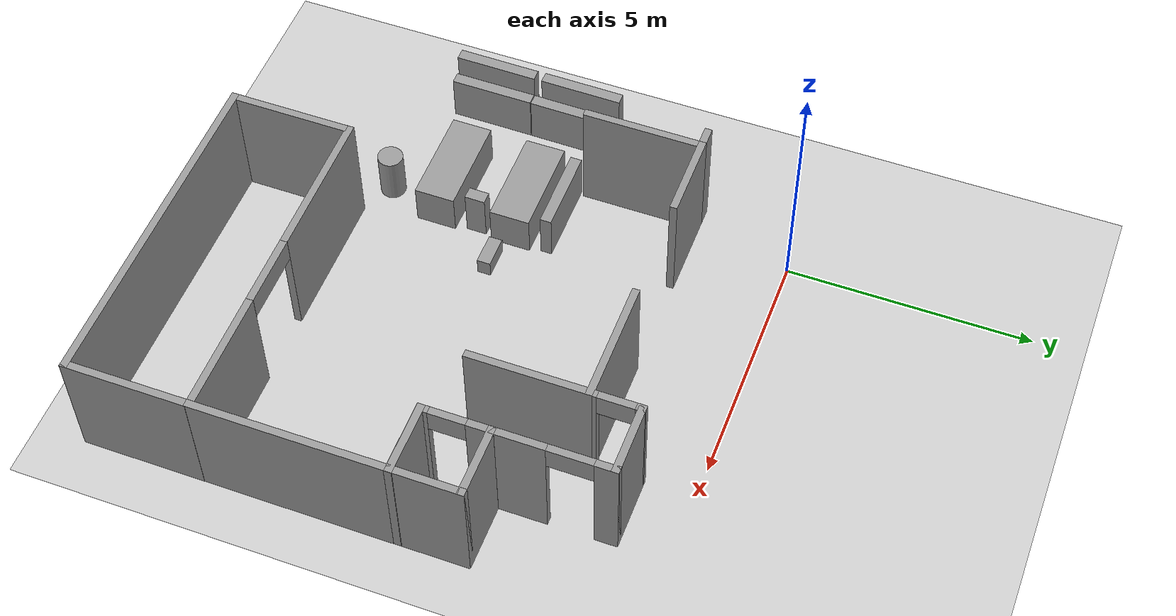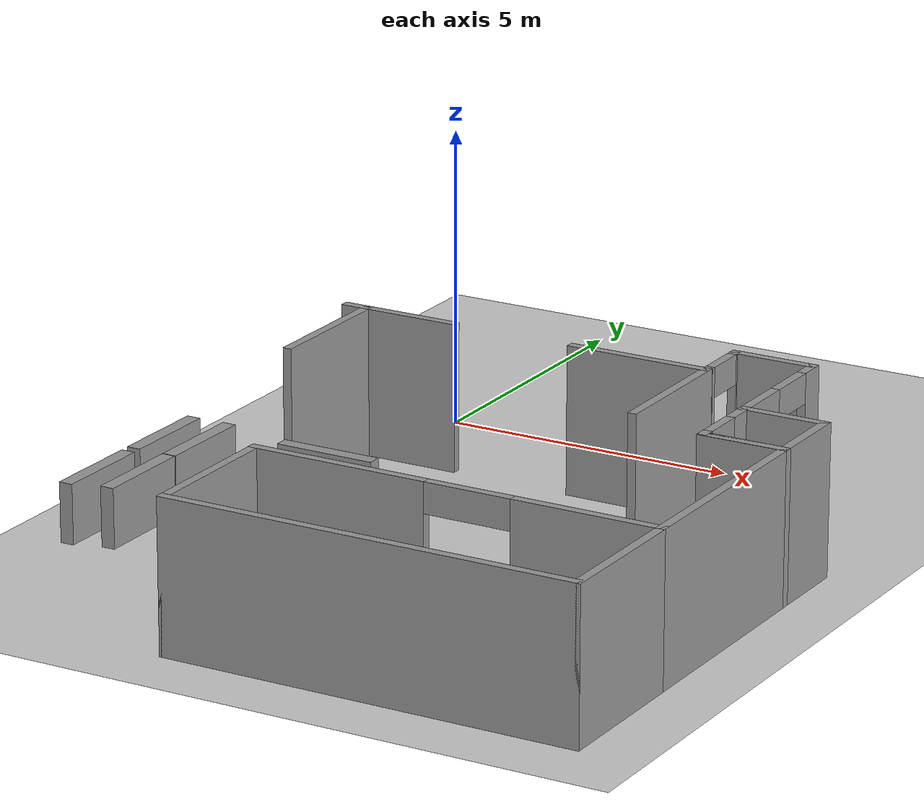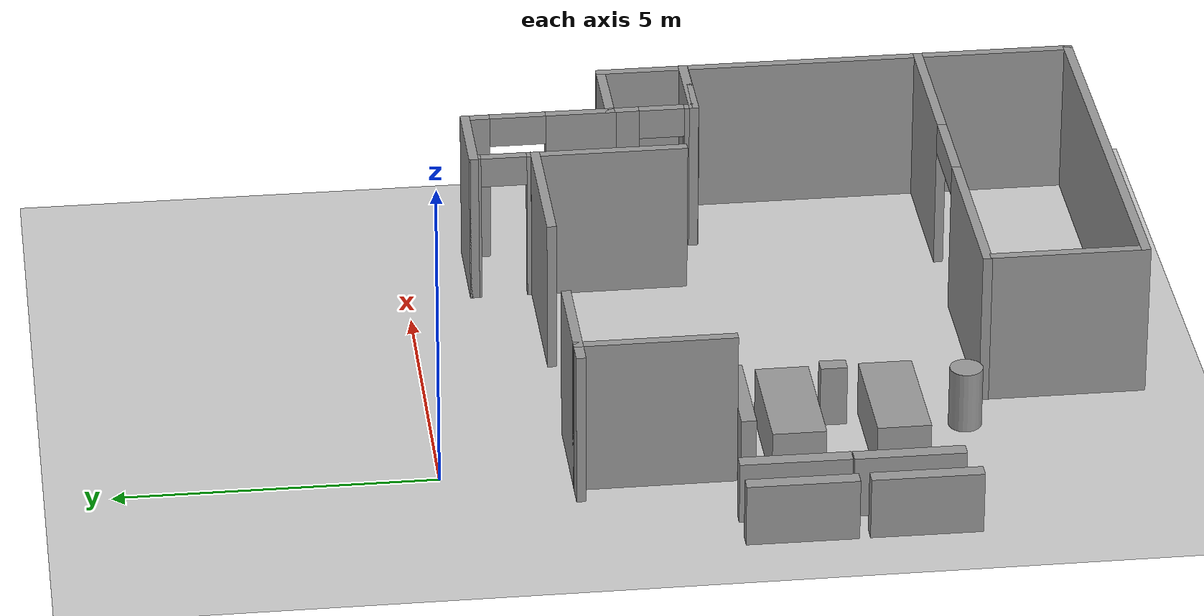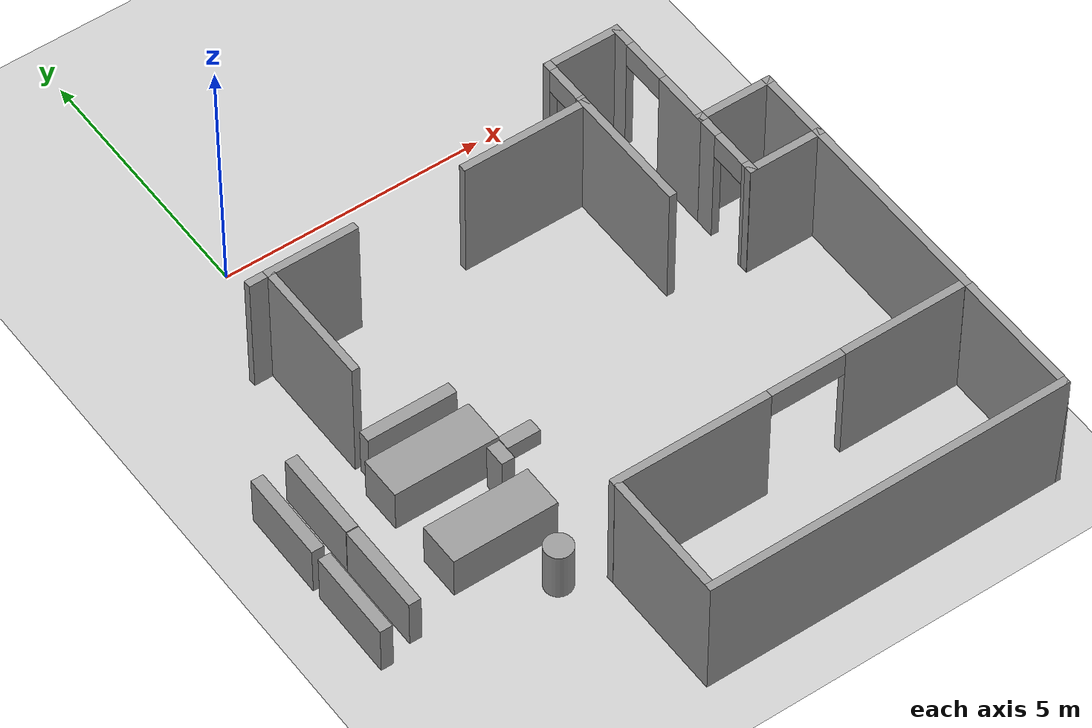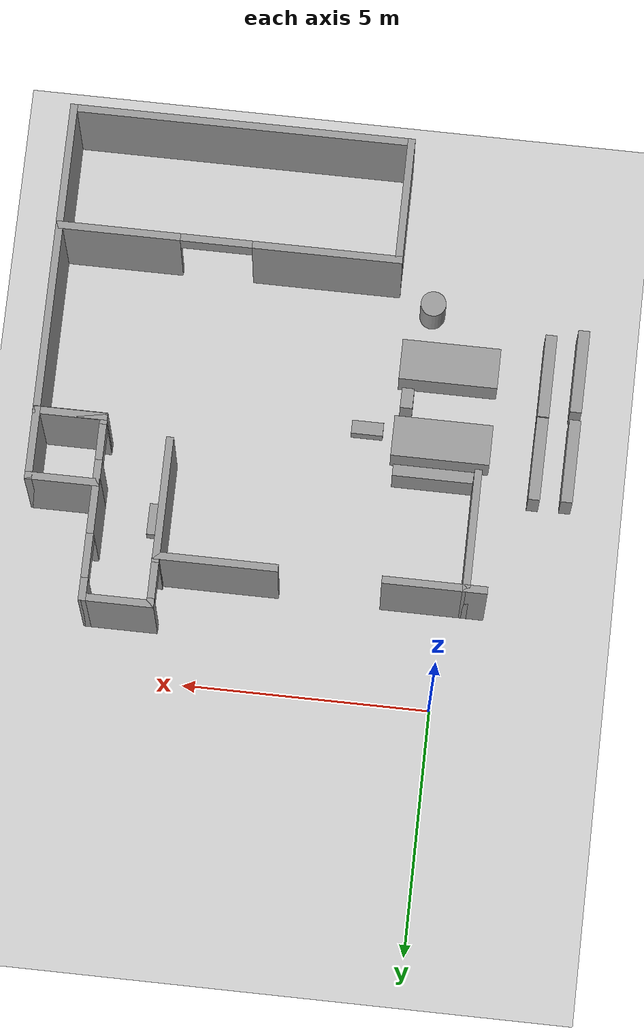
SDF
<sdf version="1.9">
 <world name="default">
  <model name="ground_plane">
   <static>true</static>
   <link name="link">
    <collision name="collision">
     <geometry><plane><normal>0 0 1</normal><size>100 100</size></plane></geometry>
     <surface><friction><ode><mu>100</mu><mu2>50</mu2></ode></friction></surface>
    </collision>
    <visual name="visual">
     <cast_shadows>false</cast_shadows>
     <geometry><plane><normal>0 0 1</normal><size>100 100</size></plane></geometry>
     <material>
      <script><uri>file://media/materials/scripts/gazebo.material</uri><name>Gazebo/Grey</name></script>
     </material>
    </visual>
   </link>
  </model>
  <model name="cma_parede_t">
   <pose>0.15995500000000001 -3.2401599999999999 0 0 0 0</pose>
   <link name="Wall_15">
    <collision name="Wall_15_Collision">
     <geometry><box><size>2.5 0.14999999999999999 2.5</size></box></geometry>
     <pose>0 0 1.25 0 0 0</pose>
    </collision>
    <visual name="Wall_15_Visual">
     <pose>0 0 1.25 0 0 0</pose>
     <geometry><box><size>2.5 0.14999999999999999 2.5</size></box></geometry>
     <material>
      <script><uri>file://media/materials/scripts/gazebo.material</uri><name>Gazebo/Grey</name></script>
      <ambient>1 1 1 1</ambient>
     </material>
    </visual>
    <pose>-0.625 0 0 0 0 1.5708</pose>
   </link>
   <link name="Wall_16">
    <collision name="Wall_16_Collision">
     <geometry><box><size>0.5 0.14999999999999999 2.5</size></box></geometry>
     <pose>0 0 1.25 0 0 0</pose>
    </collision>
    <visual name="Wall_16_Visual">
     <pose>0 0 1.25 0 0 0</pose>
     <geometry><box><size>0.5 0.14999999999999999 2.5</size></box></geometry>
     <material>
      <script><uri>file://media/materials/scripts/gazebo.material</uri><name>Gazebo/Grey</name></script>
      <ambient>1 1 1 1</ambient>
     </material>
    </visual>
    <pose>-0.80000000000000004 1.175 0 0 0 3.1415899999999999</pose>
   </link>
   <link name="Wall_18">
    <collision name="Wall_18_Collision">
     <geometry><box><size>1.75 0.14999999999999999 2.5</size></box></geometry>
     <pose>0 0 1.25 0 0 0</pose>
    </collision>
    <visual name="Wall_18_Visual">
     <pose>0 0 1.25 0 0 0</pose>
     <geometry><box><size>1.75 0.14999999999999999 2.5</size></box></geometry>
     <material>
      <script><uri>file://media/materials/scripts/gazebo.material</uri><name>Gazebo/Grey</name></script>
      <ambient>1 1 1 1</ambient>
     </material>
    </visual>
    <pose>0.17499999999999999 1.175 0 0 0 0</pose>
   </link>
   <static>true</static>
  </model>
  <model name="cma_parede_L">
   <pose>4.97628 -6.6999199999999997 0 0 0 0</pose>
   <link name="Wall_0">
    <pose>0 -1.925 0 0 0 0</pose>
    <visual name="Wall_0_Visual_0">
     <pose>-1.9850000000000001 0 1.25 0 0 0</pose>
     <geometry><box><size>3.0299999999999998 0.14999999999999999 2.5</size></box></geometry>
     <material>
      <script><uri>file://media/materials/scripts/gazebo.material</uri><name>Gazebo/Grey</name></script>
      <ambient>1 1 1 1</ambient>
     </material>
    </visual>
    <collision name="Wall_0_Collision_0">
     <geometry><box><size>3.0299999999999998 0.14999999999999999 2.5</size></box></geometry>
     <pose>-1.9850000000000001 0 1.25 0 0 0</pose>
    </collision>
    <visual name="Wall_0_Visual_1">
     <pose>2.2400000000000002 0 1.25 0 0 0</pose>
     <geometry><box><size>2.52 0.14999999999999999 2.5</size></box></geometry>
     <material>
      <script><uri>file://media/materials/scripts/gazebo.material</uri><name>Gazebo/Grey</name></script>
      <ambient>1 1 1 1</ambient>
     </material>
    </visual>
    <collision name="Wall_0_Collision_1">
     <geometry><box><size>2.52 0.14999999999999999 2.5</size></box></geometry>
     <pose>2.2400000000000002 0 1.25 0 0 0</pose>
    </collision>
    <visual name="Wall_0_Visual_2">
     <pose>0.255 0 2.25 0 0 0</pose>
     <geometry><box><size>1.45 0.14999999999999999 0.5</size></box></geometry>
     <material>
      <script><uri>file://media/materials/scripts/gazebo.material</uri><name>Gazebo/Grey</name></script>
      <ambient>1 1 1 1</ambient>
     </material>
    </visual>
    <collision name="Wall_0_Collision_2">
     <geometry><box><size>1.45 0.14999999999999999 0.5</size></box></geometry>
     <pose>0.255 0 2.25 0 0 0</pose>
    </collision>
   </link>
   <link name="Wall_1">
    <collision name="Wall_1_Collision">
     <geometry><box><size>4 0.14999999999999999 2.5</size></box></geometry>
     <pose>0 0 1.25 0 0 0</pose>
    </collision>
    <visual name="Wall_1_Visual">
     <pose>0 0 1.25 0 0 0</pose>
     <geometry><box><size>4 0.14999999999999999 2.5</size></box></geometry>
     <material>
      <script><uri>file://media/materials/scripts/gazebo.material</uri><name>Gazebo/Grey</name></script>
      <ambient>1 1 1 1</ambient>
     </material>
    </visual>
    <pose>3.4249999999999998 0 0 0 0 1.5708</pose>
   </link>
   <link name="Wall_2">
    <collision name="Wall_2_Collision">
     <geometry><box><size>1.5 0.14999999999999999 2.5</size></box></geometry>
     <pose>0 0 1.25 0 0 0</pose>
    </collision>
    <visual name="Wall_2_Visual">
     <pose>0 0 1.25 0 0 0</pose>
     <geometry><box><size>1.5 0.14999999999999999 2.5</size></box></geometry>
     <material>
      <script><uri>file://media/materials/scripts/gazebo.material</uri><name>Gazebo/Grey</name></script>
      <ambient>1 1 1 1</ambient>
     </material>
    </visual>
    <pose>2.75 1.925 0 0 0 3.1415899999999999</pose>
   </link>
   <static>true</static>
  </model>
  <model name="cma_lavabo">
   <pose>7.7229700000000001 -4.0930200000000001 0 0 0 0</pose>
   <link name="Wall_4">
    <pose>-0.67500000000000004 0 0 0 0 1.5708</pose>
    <visual name="Wall_4_Visual_0">
     <pose>-0.63500000000000001 0 1.25 0 0 0</pose>
     <geometry><box><size>0.23000000000000001 0.14999999999999999 2.5</size></box></geometry>
     <material>
      <script><uri>file://media/materials/scripts/gazebo.material</uri><name>Gazebo/Grey</name></script>
      <ambient>1 1 1 1</ambient>
     </material>
    </visual>
    <collision name="Wall_4_Collision_0">
     <geometry><box><size>0.23000000000000001 0.14999999999999999 2.5</size></box></geometry>
     <pose>-0.63500000000000001 0 1.25 0 0 0</pose>
    </collision>
    <visual name="Wall_4_Visual_1">
     <pose>0.47999999999999998 0 1.25 0 0 0</pose>
     <geometry><box><size>0.54000000000000004 0.14999999999999999 2.5</size></box></geometry>
     <material>
      <script><uri>file://media/materials/scripts/gazebo.material</uri><name>Gazebo/Grey</name></script>
      <ambient>1 1 1 1</ambient>
     </material>
    </visual>
    <collision name="Wall_4_Collision_1">
     <geometry><box><size>0.54000000000000004 0.14999999999999999 2.5</size></box></geometry>
     <pose>0.47999999999999998 0 1.25 0 0 0</pose>
    </collision>
    <visual name="Wall_4_Visual_2">
     <pose>-0.155 0 2.25 0 0 0</pose>
     <geometry><box><size>0.72999999999999998 0.14999999999999999 0.5</size></box></geometry>
     <material>
      <script><uri>file://media/materials/scripts/gazebo.material</uri><name>Gazebo/Grey</name></script>
      <ambient>1 1 1 1</ambient>
     </material>
    </visual>
    <collision name="Wall_4_Collision_2">
     <geometry><box><size>0.72999999999999998 0.14999999999999999 0.5</size></box></geometry>
     <pose>-0.155 0 2.25 0 0 0</pose>
    </collision>
   </link>
   <link name="Wall_5">
    <collision name="Wall_5_Collision">
     <geometry><box><size>1.5 0.14999999999999999 2.5</size></box></geometry>
     <pose>0 0 1.25 0 0 0</pose>
    </collision>
    <visual name="Wall_5_Visual">
     <pose>0 0 1.25 0 0 0</pose>
     <geometry><box><size>1.5 0.14999999999999999 2.5</size></box></geometry>
     <material>
      <script><uri>file://media/materials/scripts/gazebo.material</uri><name>Gazebo/Grey</name></script>
      <ambient>1 1 1 1</ambient>
     </material>
    </visual>
    <pose>0 0.67500000000000004 0 0 0 0</pose>
   </link>
   <link name="Wall_6">
    <collision name="Wall_6_Collision">
     <geometry><box><size>1.5 0.14999999999999999 2.5</size></box></geometry>
     <pose>0 0 1.25 0 0 0</pose>
    </collision>
    <visual name="Wall_6_Visual">
     <pose>0 0 1.25 0 0 0</pose>
     <geometry><box><size>1.5 0.14999999999999999 2.5</size></box></geometry>
     <material>
      <script><uri>file://media/materials/scripts/gazebo.material</uri><name>Gazebo/Grey</name></script>
      <ambient>1 1 1 1</ambient>
     </material>
    </visual>
    <pose>0.67500000000000004 0 0 0 0 -1.5708</pose>
   </link>
   <link name="Wall_7">
    <collision name="Wall_7_Collision">
     <geometry><box><size>1.5 0.14999999999999999 2.5</size></box></geometry>
     <pose>0 0 1.25 0 0 0</pose>
    </collision>
    <visual name="Wall_7_Visual">
     <pose>0 0 1.25 0 0 0</pose>
     <geometry><box><size>1.5 0.14999999999999999 2.5</size></box></geometry>
     <material>
      <script><uri>file://media/materials/scripts/gazebo.material</uri><name>Gazebo/Grey</name></script>
      <ambient>1 1 1 1</ambient>
     </material>
    </visual>
    <pose>0 -0.67500000000000004 0 0 0 3.1415899999999999</pose>
   </link>
   <static>true</static>
  </model>
  <model name="cma_L2">
   <pose>4.5168299999999997 -3.24587 0 0 0 0</pose>
   <link name="Wall_10">
    <collision name="Wall_10_Collision">
     <geometry><box><size>2.5 0.14999999999999999 2.5</size></box></geometry>
     <pose>0 0 1.25 0 0 0</pose>
    </collision>
    <visual name="Wall_10_Visual">
     <pose>0 0 1.25 0 0 0</pose>
     <geometry><box><size>2.5 0.14999999999999999 2.5</size></box></geometry>
     <material>
      <script><uri>file://media/materials/scripts/gazebo.material</uri><name>Gazebo/Grey</name></script>
      <ambient>1 1 1 1</ambient>
     </material>
    </visual>
    <pose>1.175 0 0 0 0 -1.5708</pose>
   </link>
   <link name="Wall_9">
    <collision name="Wall_9_Collision">
     <geometry><box><size>2.5 0.14999999999999999 2.5</size></box></geometry>
     <pose>0 0 1.25 0 0 0</pose>
    </collision>
    <visual name="Wall_9_Visual">
     <pose>0 0 1.25 0 0 0</pose>
     <geometry><box><size>2.5 0.14999999999999999 2.5</size></box></geometry>
     <material>
      <script><uri>file://media/materials/scripts/gazebo.material</uri><name>Gazebo/Grey</name></script>
      <ambient>1 1 1 1</ambient>
     </material>
    </visual>
    <pose>0 1.175 0 0 0 0</pose>
   </link>
   <static>true</static>
  </model>
  <model name="cma_L3">
   <pose>6.3722099999999999 -2.2602199999999999 0 0 0 0</pose>
   <link name="Wall_12">
    <pose>-0.67500000000000004 0.75 0 0 0 1.5708</pose>
    <visual name="Wall_12_Visual_0">
     <pose>-0.46000000000000002 0 1.25 0 0 0</pose>
     <geometry><box><size>0.080000000000000002 0.14999999999999999 2.5</size></box></geometry>
     <material>
      <script><uri>file://media/materials/scripts/gazebo.material</uri><name>Gazebo/Grey</name></script>
      <ambient>1 1 1 1</ambient>
     </material>
    </visual>
    <collision name="Wall_12_Collision_0">
     <geometry><box><size>0.080000000000000002 0.14999999999999999 2.5</size></box></geometry>
     <pose>-0.46000000000000002 0 1.25 0 0 0</pose>
    </collision>
    <visual name="Wall_12_Visual_1">
     <pose>0.40500000000000003 0 1.25 0 0 0</pose>
     <geometry><box><size>0.19 0.14999999999999999 2.5</size></box></geometry>
     <material>
      <script><uri>file://media/materials/scripts/gazebo.material</uri><name>Gazebo/Grey</name></script>
      <ambient>1 1 1 1</ambient>
     </material>
    </visual>
    <collision name="Wall_12_Collision_1">
     <geometry><box><size>0.19 0.14999999999999999 2.5</size></box></geometry>
     <pose>0.40500000000000003 0 1.25 0 0 0</pose>
    </collision>
    <visual name="Wall_12_Visual_2">
     <pose>-0.055 0 2.25 0 0 0</pose>
     <geometry><box><size>0.72999999999999998 0.14999999999999999 0.5</size></box></geometry>
     <material>
      <script><uri>file://media/materials/scripts/gazebo.material</uri><name>Gazebo/Grey</name></script>
      <ambient>1 1 1 1</ambient>
     </material>
    </visual>
    <collision name="Wall_12_Collision_2">
     <geometry><box><size>0.72999999999999998 0.14999999999999999 0.5</size></box></geometry>
     <pose>-0.055 0 2.25 0 0 0</pose>
    </collision>
   </link>
   <link name="Wall_13">
    <collision name="Wall_13_Collision">
     <geometry><box><size>1.5 0.14999999999999999 2.5</size></box></geometry>
     <pose>0 0 1.25 0 0 0</pose>
    </collision>
    <visual name="Wall_13_Visual">
     <pose>0 0 1.25 0 0 0</pose>
     <geometry><box><size>1.5 0.14999999999999999 2.5</size></box></geometry>
     <material>
      <script><uri>file://media/materials/scripts/gazebo.material</uri><name>Gazebo/Grey</name></script>
      <ambient>1 1 1 1</ambient>
     </material>
    </visual>
    <pose>0 1.175 0 0 0 0</pose>
   </link>
   <link name="Wall_14">
    <pose>0.67500000000000004 0 0 0 0 -1.5708</pose>
    <visual name="Wall_14_Visual_0">
     <pose>-1.0175000000000001 0 1.25 0 0 0</pose>
     <geometry><box><size>0.46500000000000002 0.14999999999999999 2.5</size></box></geometry>
     <material>
      <script><uri>file://media/materials/scripts/gazebo.material</uri><name>Gazebo/Grey</name></script>
      <ambient>1 1 1 1</ambient>
     </material>
    </visual>
    <collision name="Wall_14_Collision_0">
     <geometry><box><size>0.46500000000000002 0.14999999999999999 2.5</size></box></geometry>
     <pose>-1.0175000000000001 0 1.25 0 0 0</pose>
    </collision>
    <visual name="Wall_14_Visual_1">
     <pose>0.6825 0 1.25 0 0 0</pose>
     <geometry><box><size>1.135 0.14999999999999999 2.5</size></box></geometry>
     <material>
      <script><uri>file://media/materials/scripts/gazebo.material</uri><name>Gazebo/Grey</name></script>
      <ambient>1 1 1 1</ambient>
     </material>
    </visual>
    <collision name="Wall_14_Collision_1">
     <geometry><box><size>1.135 0.14999999999999999 2.5</size></box></geometry>
     <pose>0.6825 0 1.25 0 0 0</pose>
    </collision>
    <visual name="Wall_14_Visual_2">
     <pose>-0.33500000000000002 0 2.25 0 0 0</pose>
     <geometry><box><size>0.90000000000000002 0.14999999999999999 0.5</size></box></geometry>
     <material>
      <script><uri>file://media/materials/scripts/gazebo.material</uri><name>Gazebo/Grey</name></script>
      <ambient>1 1 1 1</ambient>
     </material>
    </visual>
    <collision name="Wall_14_Collision_2">
     <geometry><box><size>0.90000000000000002 0.14999999999999999 0.5</size></box></geometry>
     <pose>-0.33500000000000002 0 2.25 0 0 0</pose>
    </collision>
   </link>
   <static>true</static>
  </model>
  <model name="cma_U">
   <pose>4.9789500000000002 -9.92408 0 0 0 0</pose>
   <link name="Wall_16">
    <collision name="Wall_16_Collision">
     <geometry><box><size>2.5 0.14999999999999999 2.5</size></box></geometry>
     <pose>0 0 1.25 0 0 0</pose>
    </collision>
    <visual name="Wall_16_Visual">
     <pose>0 0 1.25 0 0 0</pose>
     <geometry><box><size>2.5 0.14999999999999999 2.5</size></box></geometry>
     <material>
      <script><uri>file://media/materials/scripts/gazebo.material</uri><name>Gazebo/Grey</name></script>
      <ambient>1 1 1 1</ambient>
     </material>
    </visual>
    <pose>-3.4249999999999998 0 0 0 0 -1.5708</pose>
   </link>
   <link name="Wall_17">
    <collision name="Wall_17_Collision">
     <geometry><box><size>7 0.14999999999999999 2.5</size></box></geometry>
     <pose>0 0 1.25 0 0 0</pose>
    </collision>
    <visual name="Wall_17_Visual">
     <pose>0 0 1.25 0 0 0</pose>
     <geometry><box><size>7 0.14999999999999999 2.5</size></box></geometry>
     <material>
      <script><uri>file://media/materials/scripts/gazebo.material</uri><name>Gazebo/Grey</name></script>
      <ambient>1 1 1 1</ambient>
     </material>
    </visual>
    <pose>0 -1.175 0 0 0 0</pose>
   </link>
   <link name="Wall_18">
    <collision name="Wall_18_Collision">
     <geometry><box><size>2.5 0.14999999999999999 2.5</size></box></geometry>
     <pose>0 0 1.25 0 0 0</pose>
    </collision>
    <visual name="Wall_18_Visual">
     <pose>0 0 1.25 0 0 0</pose>
     <geometry><box><size>2.5 0.14999999999999999 2.5</size></box></geometry>
     <material>
      <script><uri>file://media/materials/scripts/gazebo.material</uri><name>Gazebo/Grey</name></script>
      <ambient>1 1 1 1</ambient>
     </material>
    </visual>
    <pose>3.4249999999999998 0 0 0 0 1.5708</pose>
   </link>
   <static>true</static>
  </model>
  <model name="cma_armario_2">
   <link name="link_0">
    <pose>1.3215699999999999 0.88517800000000002 0.5 0 0 0</pose>
    <inertial>
     <mass>0.40237600000000001</mass>
     <inertia>
      <ixx>0.0353686</ixx>
      <ixy>0</ixy>
      <ixz>0</ixz>
      <iyy>0.13261600000000001</iyy>
      <iyz>0</iyz>
      <izz>0.100922</izz>
     </inertia>
    </inertial>
    <visual name="visual">
     <geometry><box><size>1.7187699999999999 0.234069 1</size></box></geometry>
     <material>
      <lighting>true</lighting>
      <script><uri>file://media/materials/scripts/gazebo.material</uri><name>Gazebo/Grey</name></script>
      <ambient>0.300000012 0.300000012 0.300000012 1</ambient>
      <diffuse>0.699999988 0.699999988 0.699999988 1</diffuse>
      <specular>0.00999999978 0.00999999978 0.00999999978 1</specular>
      <emissive>0 0 0 1</emissive>
     </material>
    </visual>
    <collision name="collision">
     <geometry><box><size>1.7187699999999999 0.234069 1</size></box></geometry>
     <surface>
      <friction>
       <ode><mu>1</mu><mu2>1</mu2><fdir1>0 0 0</fdir1><slip1>0</slip1><slip2>0</slip2></ode>
       <torsional>
        <coefficient>1</coefficient>
        <patch_radius>0</patch_radius>
        <surface_radius>0</surface_radius>
        <use_patch_radius>true</use_patch_radius>
        <ode><slip>0</slip></ode>
       </torsional>
      </friction>
      <bounce><restitution_coefficient>0</restitution_coefficient><threshold>1000000</threshold></bounce>
      <contact>
       <collide_without_contact>false</collide_without_contact>
       <collide_without_contact_bitmask>1</collide_without_contact_bitmask>
       <collide_bitmask>1</collide_bitmask>
       <ode>
        <soft_cfm>0</soft_cfm>
        <soft_erp>0.20000000000000001</soft_erp>
        <kp>10000000000000</kp>
        <kd>1</kd>
        <max_vel>0.01</max_vel>
        <min_depth>0</min_depth>
       </ode>
       <bullet>
        <split_impulse>true</split_impulse>
        <split_impulse_penetration_threshold>-0.01</split_impulse_penetration_threshold>
        <soft_cfm>0</soft_cfm>
        <soft_erp>0.20000000000000001</soft_erp>
        <kp>10000000000000</kp>
        <kd>1</kd>
       </bullet>
      </contact>
     </surface>
    </collision>
   </link>
   <static>false</static>
   <pose>-1.44245 -6.5632200000000003 0 0 0 1.5628599999999999</pose>
  </model>
  <model name="cma_armario_2_clone">
   <link name="link_0">
    <pose>1.3215699999999999 0.88517800000000002 0.5 0 0 0</pose>
    <inertial>
     <mass>0.40237600000000001</mass>
     <inertia>
      <ixx>0.0353686</ixx>
      <ixy>0</ixy>
      <ixz>0</ixz>
      <iyy>0.13261600000000001</iyy>
      <iyz>0</iyz>
      <izz>0.100922</izz>
     </inertia>
    </inertial>
    <visual name="visual">
     <geometry><box><size>1.7187699999999999 0.234069 1</size></box></geometry>
     <material>
      <lighting>true</lighting>
      <script><uri>file://media/materials/scripts/gazebo.material</uri><name>Gazebo/Grey</name></script>
      <ambient>0.300000012 0.300000012 0.300000012 1</ambient>
      <diffuse>0.699999988 0.699999988 0.699999988 1</diffuse>
      <specular>0.00999999978 0.00999999978 0.00999999978 1</specular>
      <emissive>0 0 0 1</emissive>
     </material>
    </visual>
    <collision name="collision">
     <geometry><box><size>1.7187699999999999 0.234069 1</size></box></geometry>
     <surface>
      <friction>
       <ode><mu>1</mu><mu2>1</mu2><fdir1>0 0 0</fdir1><slip1>0</slip1><slip2>0</slip2></ode>
       <torsional>
        <coefficient>1</coefficient>
        <patch_radius>0</patch_radius>
        <surface_radius>0</surface_radius>
        <use_patch_radius>true</use_patch_radius>
        <ode><slip>0</slip></ode>
       </torsional>
      </friction>
      <bounce><restitution_coefficient>0</restitution_coefficient><threshold>1000000</threshold></bounce>
      <contact>
       <collide_without_contact>false</collide_without_contact>
       <collide_without_contact_bitmask>1</collide_without_contact_bitmask>
       <collide_bitmask>1</collide_bitmask>
       <ode>
        <soft_cfm>0</soft_cfm>
        <soft_erp>0.20000000000000001</soft_erp>
        <kp>10000000000000</kp>
        <kd>1</kd>
        <max_vel>0.01</max_vel>
        <min_depth>0</min_depth>
       </ode>
       <bullet>
        <split_impulse>true</split_impulse>
        <split_impulse_penetration_threshold>-0.01</split_impulse_penetration_threshold>
        <soft_cfm>0</soft_cfm>
        <soft_erp>0.20000000000000001</soft_erp>
        <kp>10000000000000</kp>
        <kd>1</kd>
       </bullet>
      </contact>
     </surface>
    </collision>
   </link>
   <static>false</static>
   <pose>-1.44899 -8.4461300000000001 0 0 0 1.5628599999999999</pose>
  </model>
  <model name="cma_cama_s">
   <link name="link_0">
    <pose>0 1.9999999999999999e-06 0 0 0 0</pose>
    <inertial>
     <mass>1.44546</mass>
     <inertia>
      <ixx>0.173816</ixx>
      <ixy>0</ixy>
      <ixz>0</ixz>
      <iyy>0.57522300000000004</iyy>
      <iyz>0</iyz>
      <izz>0.56745999999999996</izz>
     </inertia>
    </inertial>
    <visual name="visual">
     <geometry><box><size>2.0053999999999998 0.83022700000000005 0.86816300000000002</size></box></geometry>
     <material>
      <lighting>true</lighting>
      <script><uri>file://media/materials/scripts/gazebo.material</uri><name>Gazebo/Grey</name></script>
      <ambient>0.300000012 0.300000012 0.300000012 1</ambient>
      <diffuse>0.699999988 0.699999988 0.699999988 1</diffuse>
      <specular>0.00999999978 0.00999999978 0.00999999978 1</specular>
      <emissive>0 0 0 1</emissive>
     </material>
    </visual>
    <collision name="collision">
     <geometry><box><size>2.0053999999999998 0.83022700000000005 0.86816300000000002</size></box></geometry>
     <surface>
      <friction>
       <ode><mu>1</mu><mu2>1</mu2><fdir1>0 0 0</fdir1><slip1>0</slip1><slip2>0</slip2></ode>
       <torsional>
        <coefficient>1</coefficient>
        <patch_radius>0</patch_radius>
        <surface_radius>0</surface_radius>
        <use_patch_radius>true</use_patch_radius>
        <ode><slip>0</slip></ode>
       </torsional>
      </friction>
      <bounce><restitution_coefficient>0</restitution_coefficient><threshold>1000000</threshold></bounce>
      <contact>
       <collide_without_contact>false</collide_without_contact>
       <collide_without_contact_bitmask>1</collide_without_contact_bitmask>
       <collide_bitmask>1</collide_bitmask>
       <ode>
        <soft_cfm>0</soft_cfm>
        <soft_erp>0.20000000000000001</soft_erp>
        <kp>10000000000000</kp>
        <kd>1</kd>
        <max_vel>0.01</max_vel>
        <min_depth>0</min_depth>
       </ode>
       <bullet>
        <split_impulse>true</split_impulse>
        <split_impulse_penetration_threshold>-0.01</split_impulse_penetration_threshold>
        <soft_cfm>0</soft_cfm>
        <soft_erp>0.20000000000000001</soft_erp>
        <kp>10000000000000</kp>
        <kd>1</kd>
       </bullet>
      </contact>
     </surface>
    </collision>
   </link>
   <static>false</static>
   <pose>0.31339 -5.4201199999999998 0.43407800000000002 9.9999999999999995e-07 4.0000000000000015e-06 -9.9999999999999995e-07</pose>
  </model>
  <model name="cma_cama_s_0">
   <link name="link_0">
    <pose>0 1.9999999999999999e-06 0 0 0 0</pose>
    <inertial>
     <mass>1.44546</mass>
     <inertia>
      <ixx>0.173816</ixx>
      <ixy>0</ixy>
      <ixz>0</ixz>
      <iyy>0.57522300000000004</iyy>
      <iyz>0</iyz>
      <izz>0.56745999999999996</izz>
     </inertia>
    </inertial>
    <visual name="visual">
     <geometry><box><size>2.0053999999999998 0.83022700000000005 0.86816300000000002</size></box></geometry>
     <material>
      <lighting>true</lighting>
      <script><uri>file://media/materials/scripts/gazebo.material</uri><name>Gazebo/Grey</name></script>
      <ambient>0.300000012 0.300000012 0.300000012 1</ambient>
      <diffuse>0.699999988 0.699999988 0.699999988 1</diffuse>
      <specular>0.00999999978 0.00999999978 0.00999999978 1</specular>
      <emissive>0 0 0 1</emissive>
     </material>
    </visual>
    <collision name="collision">
     <geometry><box><size>2.0053999999999998 0.83022700000000005 0.86816300000000002</size></box></geometry>
     <surface>
      <friction>
       <ode><mu>1</mu><mu2>1</mu2><fdir1>0 0 0</fdir1><slip1>0</slip1><slip2>0</slip2></ode>
       <torsional>
        <coefficient>1</coefficient>
        <patch_radius>0</patch_radius>
        <surface_radius>0</surface_radius>
        <use_patch_radius>true</use_patch_radius>
        <ode><slip>0</slip></ode>
       </torsional>
      </friction>
      <bounce><restitution_coefficient>0</restitution_coefficient><threshold>1000000</threshold></bounce>
      <contact>
       <collide_without_contact>false</collide_without_contact>
       <collide_without_contact_bitmask>1</collide_without_contact_bitmask>
       <collide_bitmask>1</collide_bitmask>
       <ode>
        <soft_cfm>0</soft_cfm>
        <soft_erp>0.20000000000000001</soft_erp>
        <kp>10000000000000</kp>
        <kd>1</kd>
        <max_vel>0.01</max_vel>
        <min_depth>0</min_depth>
       </ode>
       <bullet>
        <split_impulse>true</split_impulse>
        <split_impulse_penetration_threshold>-0.01</split_impulse_penetration_threshold>
        <soft_cfm>0</soft_cfm>
        <soft_erp>0.20000000000000001</soft_erp>
        <kp>10000000000000</kp>
        <kd>1</kd>
       </bullet>
      </contact>
     </surface>
    </collision>
   </link>
   <static>false</static>
   <pose>0.31346600000000002 -7.03078 0.43408200000000002 0 0 0</pose>
  </model>
  <model name="cma_picador">
   <link name="link_2">
    <pose>-0.7258 -1.6910400000000001 0 0 0 0</pose>
    <inertial>
     <mass>0.10473200000000001</mass>
     <inertia>
      <ixx>0.0092790600000000004</ixx>
      <ixy>0</ixy>
      <ixz>0</ixz>
      <iyy>0.010243</iyy>
      <iyz>0</iyz>
      <izz>0.0020667200000000002</izz>
     </inertia>
    </inertial>
    <visual name="visual">
     <geometry><box><size>0.416688 0.25134000000000001 1</size></box></geometry>
     <material>
      <lighting>true</lighting>
      <script><uri>file://media/materials/scripts/gazebo.material</uri><name>Gazebo/Grey</name></script>
      <ambient>0.300000012 0.300000012 0.300000012 1</ambient>
      <diffuse>0.699999988 0.699999988 0.699999988 1</diffuse>
      <specular>0.00999999978 0.00999999978 0.00999999978 1</specular>
      <emissive>0 0 0 1</emissive>
     </material>
    </visual>
    <collision name="collision">
     <geometry><box><size>0.416688 0.25134000000000001 1</size></box></geometry>
     <surface>
      <friction>
       <ode><mu>1</mu><mu2>1</mu2><fdir1>0 0 0</fdir1><slip1>0</slip1><slip2>0</slip2></ode>
       <torsional>
        <coefficient>1</coefficient>
        <patch_radius>0</patch_radius>
        <surface_radius>0</surface_radius>
        <use_patch_radius>true</use_patch_radius>
        <ode><slip>0</slip></ode>
       </torsional>
      </friction>
      <bounce><restitution_coefficient>0</restitution_coefficient><threshold>1000000</threshold></bounce>
      <contact>
       <collide_without_contact>false</collide_without_contact>
       <collide_without_contact_bitmask>1</collide_without_contact_bitmask>
       <collide_bitmask>1</collide_bitmask>
       <ode>
        <soft_cfm>0</soft_cfm>
        <soft_erp>0.20000000000000001</soft_erp>
        <kp>10000000000000</kp>
        <kd>1</kd>
        <max_vel>0.01</max_vel>
        <min_depth>0</min_depth>
       </ode>
       <bullet>
        <split_impulse>true</split_impulse>
        <split_impulse_penetration_threshold>-0.01</split_impulse_penetration_threshold>
        <soft_cfm>0</soft_cfm>
        <soft_erp>0.20000000000000001</soft_erp>
        <kp>10000000000000</kp>
        <kd>1</kd>
       </bullet>
      </contact>
     </surface>
    </collision>
   </link>
   <static>false</static>
   <pose>-0.58513499999999996 -5.4543699999999999 0.50000199999999995 2.0000000000000008e-06 2.0000000000000003e-06 1.56538</pose>
  </model>
  <model name="cma_armario_3">
   <link name="link_0">
    <pose>1.3215699999999999 0.88517800000000002 0.5 0 0 0</pose>
    <inertial>
     <mass>0.40237600000000001</mass>
     <inertia>
      <ixx>0.0353686</ixx>
      <ixy>0</ixy>
      <ixz>0</ixz>
      <iyy>0.13261600000000001</iyy>
      <iyz>0</iyz>
      <izz>0.100922</izz>
     </inertia>
    </inertial>
    <visual name="visual">
     <geometry><box><size>1.7187699999999999 0.234069 1</size></box></geometry>
     <material>
      <lighting>true</lighting>
      <script><uri>file://media/materials/scripts/gazebo.material</uri><name>Gazebo/Grey</name></script>
      <ambient>0.300000012 0.300000012 0.300000012 1</ambient>
      <diffuse>0.699999988 0.699999988 0.699999988 1</diffuse>
      <specular>0.00999999978 0.00999999978 0.00999999978 1</specular>
      <emissive>0 0 0 1</emissive>
     </material>
    </visual>
    <collision name="collision">
     <geometry><box><size>1.7187699999999999 0.234069 1</size></box></geometry>
     <surface>
      <friction>
       <ode><mu>1</mu><mu2>1</mu2><fdir1>0 0 0</fdir1><slip1>0</slip1><slip2>0</slip2></ode>
       <torsional>
        <coefficient>1</coefficient>
        <patch_radius>0</patch_radius>
        <surface_radius>0</surface_radius>
        <use_patch_radius>true</use_patch_radius>
        <ode><slip>0</slip></ode>
       </torsional>
      </friction>
      <bounce><restitution_coefficient>0</restitution_coefficient><threshold>1000000</threshold></bounce>
      <contact>
       <collide_without_contact>false</collide_without_contact>
       <collide_without_contact_bitmask>1</collide_without_contact_bitmask>
       <collide_bitmask>1</collide_bitmask>
       <ode>
        <soft_cfm>0</soft_cfm>
        <soft_erp>0.20000000000000001</soft_erp>
        <kp>10000000000000</kp>
        <kd>1</kd>
        <max_vel>0.01</max_vel>
        <min_depth>0</min_depth>
       </ode>
       <bullet>
        <split_impulse>true</split_impulse>
        <split_impulse_penetration_threshold>-0.01</split_impulse_penetration_threshold>
        <soft_cfm>0</soft_cfm>
        <soft_erp>0.20000000000000001</soft_erp>
        <kp>10000000000000</kp>
        <kd>1</kd>
       </bullet>
      </contact>
     </surface>
    </collision>
   </link>
   <static>false</static>
   <pose>-0.94082100000000002 -5.5562800000000001 3.0000000000000001e-06 0 6.0000000000000002e-06 -0.001225</pose>
  </model>
  <model name="cma_armario_4">
   <link name="link_0">
    <pose>1.3215699999999999 0.88517800000000002 0.5 0 0 0</pose>
    <inertial>
     <mass>0.40237600000000001</mass>
     <inertia>
      <ixx>0.0353686</ixx>
      <ixy>0</ixy>
      <ixz>0</ixz>
      <iyy>0.13261600000000001</iyy>
      <iyz>0</iyz>
      <izz>0.100922</izz>
     </inertia>
    </inertial>
    <visual name="visual">
     <geometry><box><size>1.7187699999999999 0.234069 1</size></box></geometry>
     <material>
      <lighting>true</lighting>
      <script><uri>file://media/materials/scripts/gazebo.material</uri><name>Gazebo/Grey</name></script>
      <ambient>0.300000012 0.300000012 0.300000012 1</ambient>
      <diffuse>0.699999988 0.699999988 0.699999988 1</diffuse>
      <specular>0.00999999978 0.00999999978 0.00999999978 1</specular>
      <emissive>0 0 0 1</emissive>
     </material>
    </visual>
    <collision name="collision">
     <geometry><box><size>1.7187699999999999 0.234069 1</size></box></geometry>
     <surface>
      <friction>
       <ode><mu>1</mu><mu2>1</mu2><fdir1>0 0 0</fdir1><slip1>0</slip1><slip2>0</slip2></ode>
       <torsional>
        <coefficient>1</coefficient>
        <patch_radius>0</patch_radius>
        <surface_radius>0</surface_radius>
        <use_patch_radius>true</use_patch_radius>
        <ode><slip>0</slip></ode>
       </torsional>
      </friction>
      <bounce><restitution_coefficient>0</restitution_coefficient><threshold>1000000</threshold></bounce>
      <contact>
       <collide_without_contact>false</collide_without_contact>
       <collide_without_contact_bitmask>1</collide_without_contact_bitmask>
       <collide_bitmask>1</collide_bitmask>
       <ode>
        <soft_cfm>0</soft_cfm>
        <soft_erp>0.20000000000000001</soft_erp>
        <kp>10000000000000</kp>
        <kd>1</kd>
        <max_vel>0.01</max_vel>
        <min_depth>0</min_depth>
       </ode>
       <bullet>
        <split_impulse>true</split_impulse>
        <split_impulse_penetration_threshold>-0.01</split_impulse_penetration_threshold>
        <soft_cfm>0</soft_cfm>
        <soft_erp>0.20000000000000001</soft_erp>
        <kp>10000000000000</kp>
        <kd>1</kd>
       </bullet>
      </contact>
     </surface>
    </collision>
   </link>
   <static>false</static>
   <pose>-0.78518600000000005 -6.5470300000000003 0 0 0 1.5622400000000001</pose>
  </model>
  <model name="cma_armario_5">
   <link name="link_0">
    <pose>1.3215699999999999 0.88517800000000002 0.5 0 0 0</pose>
    <inertial>
     <mass>0.40237600000000001</mass>
     <inertia>
      <ixx>0.0353686</ixx>
      <ixy>0</ixy>
      <ixz>0</ixz>
      <iyy>0.13261600000000001</iyy>
      <iyz>0</iyz>
      <izz>0.100922</izz>
     </inertia>
    </inertial>
    <visual name="visual">
     <geometry><box><size>1.7187699999999999 0.234069 1</size></box></geometry>
     <material>
      <lighting>true</lighting>
      <script><uri>file://media/materials/scripts/gazebo.material</uri><name>Gazebo/Grey</name></script>
      <ambient>0.300000012 0.300000012 0.300000012 1</ambient>
      <diffuse>0.699999988 0.699999988 0.699999988 1</diffuse>
      <specular>0.00999999978 0.00999999978 0.00999999978 1</specular>
      <emissive>0 0 0 1</emissive>
     </material>
    </visual>
    <collision name="collision">
     <geometry><box><size>1.7187699999999999 0.234069 1</size></box></geometry>
     <surface>
      <friction>
       <ode><mu>1</mu><mu2>1</mu2><fdir1>0 0 0</fdir1><slip1>0</slip1><slip2>0</slip2></ode>
       <torsional>
        <coefficient>1</coefficient>
        <patch_radius>0</patch_radius>
        <surface_radius>0</surface_radius>
        <use_patch_radius>true</use_patch_radius>
        <ode><slip>0</slip></ode>
       </torsional>
      </friction>
      <bounce><restitution_coefficient>0</restitution_coefficient><threshold>1000000</threshold></bounce>
      <contact>
       <collide_without_contact>false</collide_without_contact>
       <collide_without_contact_bitmask>1</collide_without_contact_bitmask>
       <collide_bitmask>1</collide_bitmask>
       <ode>
        <soft_cfm>0</soft_cfm>
        <soft_erp>0.20000000000000001</soft_erp>
        <kp>10000000000000</kp>
        <kd>1</kd>
        <max_vel>0.01</max_vel>
        <min_depth>0</min_depth>
       </ode>
       <bullet>
        <split_impulse>true</split_impulse>
        <split_impulse_penetration_threshold>-0.01</split_impulse_penetration_threshold>
        <soft_cfm>0</soft_cfm>
        <soft_erp>0.20000000000000001</soft_erp>
        <kp>10000000000000</kp>
        <kd>1</kd>
       </bullet>
      </contact>
     </surface>
    </collision>
   </link>
   <static>false</static>
   <pose>-0.793709 -8.2781900000000004 0 0 0 1.5668799999999998</pose>
  </model>
  <model name="cma_cesto_0">
   <link name="link_1">
    <pose>-0.32965899999999998 -1.55494 0 0 0 0</pose>
    <inertial>
     <mass>0.267897</mass>
     <inertia>
      <ixx>0.026810199999999999</ixx>
      <ixy>0</ixy>
      <ixz>0</ixz>
      <iyy>0.026810199999999999</iyy>
      <iyz>0</iyz>
      <izz>0.0089711099999999992</izz>
     </inertia>
    </inertial>
    <visual name="visual">
     <geometry><cylinder><radius>0.25879200000000002</radius><length>1</length></cylinder></geometry>
     <material>
      <lighting>true</lighting>
      <script><uri>file://media/materials/scripts/gazebo.material</uri><name>Gazebo/Grey</name></script>
      <ambient>0.300000012 0.300000012 0.300000012 1</ambient>
      <diffuse>0.699999988 0.699999988 0.699999988 1</diffuse>
      <specular>0.00999999978 0.00999999978 0.00999999978 1</specular>
      <emissive>0 0 0 1</emissive>
     </material>
    </visual>
    <collision name="collision">
     <geometry><cylinder><radius>0.25879200000000002</radius><length>1</length></cylinder></geometry>
     <surface>
      <friction>
       <ode><mu>1</mu><mu2>1</mu2><fdir1>0 0 0</fdir1><slip1>0</slip1><slip2>0</slip2></ode>
       <torsional>
        <coefficient>1</coefficient>
        <patch_radius>0</patch_radius>
        <surface_radius>0</surface_radius>
        <use_patch_radius>true</use_patch_radius>
        <ode><slip>0</slip></ode>
       </torsional>
      </friction>
      <bounce><restitution_coefficient>0</restitution_coefficient><threshold>1000000</threshold></bounce>
      <contact>
       <collide_without_contact>false</collide_without_contact>
       <collide_without_contact_bitmask>1</collide_without_contact_bitmask>
       <collide_bitmask>1</collide_bitmask>
       <ode>
        <soft_cfm>0</soft_cfm>
        <soft_erp>0.20000000000000001</soft_erp>
        <kp>10000000000000</kp>
        <kd>1</kd>
        <max_vel>0.01</max_vel>
        <min_depth>0</min_depth>
       </ode>
       <bullet>
        <split_impulse>true</split_impulse>
        <split_impulse_penetration_threshold>-0.01</split_impulse_penetration_threshold>
        <soft_cfm>0</soft_cfm>
        <soft_erp>0.20000000000000001</soft_erp>
        <kp>10000000000000</kp>
        <kd>1</kd>
       </bullet>
      </contact>
     </surface>
    </collision>
   </link>
   <static>false</static>
   <pose>1.1020300000000001 -6.65937 0.49999100000000002 0 0 0</pose>
  </model>
  <model name="cma_barra_70cm">
   <link name="link_2">
    <pose>3.3538399999999999 1.20238 0.5 0 0 0</pose>
    <inertial>
     <mass>0.063136800000000007</mass>
     <inertia>
      <ixx>0.0010654200000000001</ixx>
      <ixy>0</ixy>
      <ixz>0</ixz>
      <iyy>0.0028472699999999998</iyy>
      <iyz>0</iyz>
      <izz>0.0025815</izz>
     </inertia>
    </inertial>
    <visual name="visual">
     <geometry><box><size>0.64393800000000001 0.27572799999999997 0.35573700000000003</size></box></geometry>
     <material>
      <lighting>true</lighting>
      <script><uri>file://media/materials/scripts/gazebo.material</uri><name>Gazebo/Grey</name></script>
      <ambient>0.300000012 0.300000012 0.300000012 1</ambient>
      <diffuse>0.699999988 0.699999988 0.699999988 1</diffuse>
      <specular>0.00999999978 0.00999999978 0.00999999978 1</specular>
      <emissive>0 0 0 1</emissive>
     </material>
    </visual>
    <collision name="collision">
     <geometry><box><size>0.64393800000000001 0.27572799999999997 0.35573700000000003</size></box></geometry>
     <surface>
      <friction>
       <ode><mu>1</mu><mu2>1</mu2><fdir1>0 0 0</fdir1><slip1>0</slip1><slip2>0</slip2></ode>
       <torsional>
        <coefficient>1</coefficient>
        <patch_radius>0</patch_radius>
        <surface_radius>0</surface_radius>
        <use_patch_radius>true</use_patch_radius>
        <ode><slip>0</slip></ode>
       </torsional>
      </friction>
      <bounce><restitution_coefficient>0</restitution_coefficient><threshold>1000000</threshold></bounce>
      <contact>
       <collide_without_contact>false</collide_without_contact>
       <collide_without_contact_bitmask>1</collide_without_contact_bitmask>
       <collide_bitmask>1</collide_bitmask>
       <ode>
        <soft_cfm>0</soft_cfm>
        <soft_erp>0.20000000000000001</soft_erp>
        <kp>10000000000000</kp>
        <kd>1</kd>
        <max_vel>0.01</max_vel>
        <min_depth>0</min_depth>
       </ode>
       <bullet>
        <split_impulse>true</split_impulse>
        <split_impulse_penetration_threshold>-0.01</split_impulse_penetration_threshold>
        <soft_cfm>0</soft_cfm>
        <soft_erp>0.20000000000000001</soft_erp>
        <kp>10000000000000</kp>
        <kd>1</kd>
       </bullet>
      </contact>
     </surface>
    </collision>
   </link>
   <static>false</static>
   <pose>-1.5095799999999999 -6.8433799999999998 -0.32214399999999999 2.7000000000000002e-05 0 -0.00059299999999999999</pose>
  </model>
  <model name="cma_barra_70cmV">
   <link name="link_2">
    <pose>0.076239000000000001 -9.9999999999999995e-07 0 0 0 -1.5755999999999999</pose>
    <inertial>
     <mass>0.063136800000000007</mass>
     <inertia>
      <ixx>0.0010654200000000001</ixx>
      <ixy>0</ixy>
      <ixz>0</ixz>
      <iyy>0.0028472699999999998</iyy>
      <iyz>0</iyz>
      <izz>0.0025815</izz>
     </inertia>
    </inertial>
    <visual name="visual">
     <geometry><box><size>0.64393800000000001 0.27572799999999997 0.35573700000000003</size></box></geometry>
     <material>
      <lighting>true</lighting>
      <script><uri>file://media/materials/scripts/gazebo.material</uri><name>Gazebo/Grey</name></script>
      <ambient>0.300000012 0.300000012 0.300000012 1</ambient>
      <diffuse>0.699999988 0.699999988 0.699999988 1</diffuse>
      <specular>0.00999999978 0.00999999978 0.00999999978 1</specular>
      <emissive>0 0 0 1</emissive>
     </material>
    </visual>
    <collision name="collision">
     <geometry><box><size>0.64393800000000001 0.27572799999999997 0.35573700000000003</size></box></geometry>
     <surface>
      <friction>
       <ode><mu>1</mu><mu2>1</mu2><fdir1>0 0 0</fdir1><slip1>0</slip1><slip2>0</slip2></ode>
       <torsional>
        <coefficient>1</coefficient>
        <patch_radius>0</patch_radius>
        <surface_radius>0</surface_radius>
        <use_patch_radius>true</use_patch_radius>
        <ode><slip>0</slip></ode>
       </torsional>
      </friction>
      <bounce><restitution_coefficient>0</restitution_coefficient><threshold>1000000</threshold></bounce>
      <contact>
       <collide_without_contact>false</collide_without_contact>
       <collide_without_contact_bitmask>1</collide_without_contact_bitmask>
       <collide_bitmask>1</collide_bitmask>
       <ode>
        <soft_cfm>0</soft_cfm>
        <soft_erp>0.20000000000000001</soft_erp>
        <kp>10000000000000</kp>
        <kd>1</kd>
        <max_vel>0.01</max_vel>
        <min_depth>0</min_depth>
       </ode>
       <bullet>
        <split_impulse>true</split_impulse>
        <split_impulse_penetration_threshold>-0.01</split_impulse_penetration_threshold>
        <soft_cfm>0</soft_cfm>
        <soft_erp>0.20000000000000001</soft_erp>
        <kp>10000000000000</kp>
        <kd>1</kd>
       </bullet>
      </contact>
     </surface>
    </collision>
   </link>
   <static>false</static>
   <pose>5.8495999999999997 -3.2824900000000001 0.177868 0 0 -0.00080099999999999985</pose>
  </model>
 </world>
</sdf>
